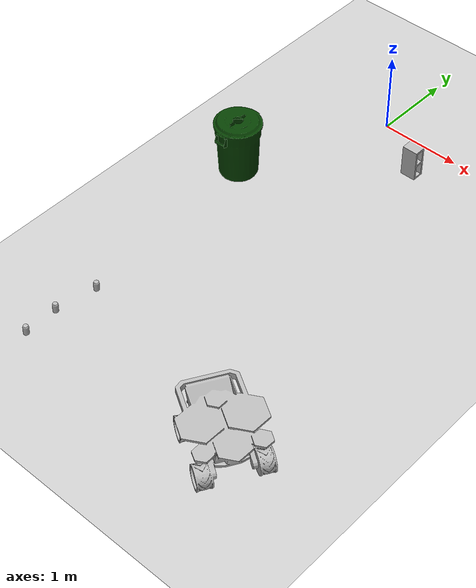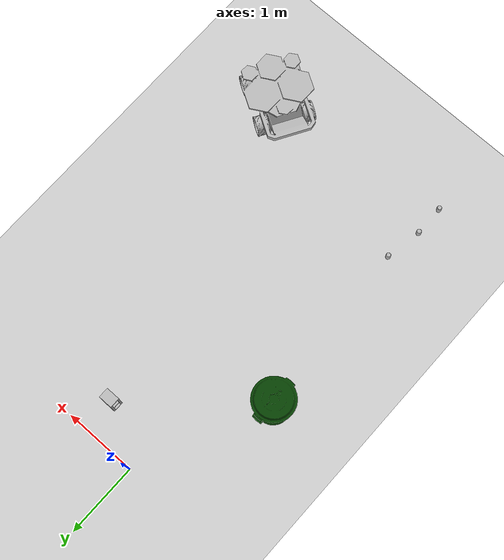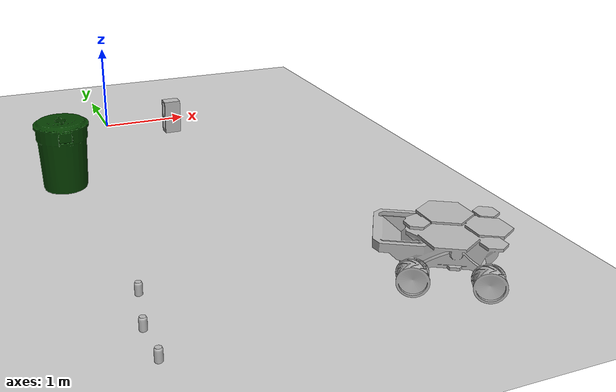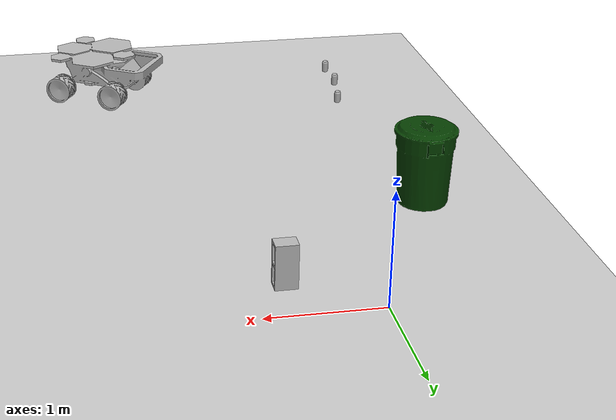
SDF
<sdf version="1.6">
 <world name="default">
  <model name="ground_plane">
   <static>1</static>
   <link name="link">
    <collision name="collision">
     <geometry><plane><normal>0 0 1</normal><size>100 100</size></plane></geometry>
     <surface>
      <contact><collide_bitmask>65535</collide_bitmask></contact>
      <friction><ode><mu>100</mu><mu2>50</mu2></ode></friction>
     </surface>
    </collision>
    <visual name="visual">
     <cast_shadows>0</cast_shadows>
     <geometry><plane><normal>0 0 1</normal><size>100 100</size></plane></geometry>
     <material>
      <script><uri>file://media/materials/scripts/gazebo.material</uri><name>Gazebo/Grey</name></script>
     </material>
    </visual>
   </link>
  </model>
  <model name="coke_can">
   <link name="link">
    <inertial>
     <pose>0 0 0.06 0 -0 0</pose>
     <mass>0.39</mass>
     <inertia>
      <ixx>0.00055575</ixx>
      <ixy>0</ixy>
      <ixz>0</ixz>
      <iyy>0.00055575</iyy>
      <iyz>0</iyz>
      <izz>0.0001755</izz>
     </inertia>
    </inertial>
    <collision name="collision">
     <pose>0.003937 0.004724 -0.18 0 -0 0</pose>
     <geometry><mesh><uri>model://coke_can/meshes/coke_can.dae</uri></mesh></geometry>
     <surface>
      <friction><ode><mu>1</mu><mu2>1</mu2></ode></friction>
      <contact><ode><kp>1e+07</kp><kd>1</kd><min_depth>0.001</min_depth><max_vel>0.1</max_vel></ode></contact>
     </surface>
    </collision>
    <visual name="visual">
     <pose>0.003937 0.004724 -0.18 0 -0 0</pose>
     <geometry><mesh><uri>model://coke_can/meshes/coke_can.dae</uri></mesh></geometry>
    </visual>
   </link>
   <pose>-0.710522 -5.10068 -0.003467 -0.037149 0.007416 -0.000725</pose>
  </model>
  <model name="coke_can_0">
   <link name="link">
    <inertial>
     <pose>0 0 0.06 0 -0 0</pose>
     <mass>0.39</mass>
     <inertia>
      <ixx>0.00055575</ixx>
      <ixy>0</ixy>
      <ixz>0</ixz>
      <iyy>0.00055575</iyy>
      <iyz>0</iyz>
      <izz>0.0001755</izz>
     </inertia>
    </inertial>
    <collision name="collision">
     <pose>0.003937 0.004724 -0.18 0 -0 0</pose>
     <geometry><mesh><uri>model://coke_can/meshes/coke_can.dae</uri></mesh></geometry>
     <surface>
      <friction><ode><mu>1</mu><mu2>1</mu2></ode></friction>
      <contact><ode><kp>1e+07</kp><kd>1</kd><min_depth>0.001</min_depth><max_vel>0.1</max_vel></ode></contact>
     </surface>
    </collision>
    <visual name="visual">
     <pose>0.003937 0.004724 -0.18 0 -0 0</pose>
     <geometry><mesh><uri>model://coke_can/meshes/coke_can.dae</uri></mesh></geometry>
    </visual>
   </link>
   <pose>-0.716567 -4.68502 -0.003467 -0.037149 0.007416 -0.000725</pose>
  </model>
  <model name="coke_can_1">
   <link name="link">
    <inertial>
     <pose>0 0 0.06 0 -0 0</pose>
     <mass>0.39</mass>
     <inertia>
      <ixx>0.00055575</ixx>
      <ixy>0</ixy>
      <ixz>0</ixz>
      <iyy>0.00055575</iyy>
      <iyz>0</iyz>
      <izz>0.0001755</izz>
     </inertia>
    </inertial>
    <collision name="collision">
     <pose>0.003937 0.004724 -0.18 0 -0 0</pose>
     <geometry><mesh><uri>model://coke_can/meshes/coke_can.dae</uri></mesh></geometry>
     <surface>
      <friction><ode><mu>1</mu><mu2>1</mu2></ode></friction>
      <contact><ode><kp>1e+07</kp><kd>1</kd><min_depth>0.001</min_depth><max_vel>0.1</max_vel></ode></contact>
     </surface>
    </collision>
    <visual name="visual">
     <pose>0.003937 0.004724 -0.18 0 -0 0</pose>
     <geometry><mesh><uri>model://coke_can/meshes/coke_can.dae</uri></mesh></geometry>
    </visual>
   </link>
   <pose>-0.625612 -4.18158 -0.003467 -0.037154 0.007408 -0.000726</pose>
  </model>
  <model name="first_2015_trash_can">
   <link name="link">
    <inertial>
     <pose>0 0 0.3683 0 -0 0</pose>
     <mass>4.83076</mass>
     <inertia>
      <ixx>0.281534</ixx>
      <ixy>0</ixy>
      <ixz>0</ixz>
      <iyy>0.281534</iyy>
      <iyz>0</iyz>
      <izz>0.126223</izz>
     </inertia>
    </inertial>
    <visual name="visual">
     <geometry><mesh><uri>model://first_2015_trash_can/meshes/trash_can.dae</uri></mesh></geometry>
    </visual>
    <collision name="collision">
     <geometry><mesh><uri>model://first_2015_trash_can/meshes/trash_can.dae</uri></mesh></geometry>
    </collision>
   </link>
   <pose>-0.803497 -1.75169 -4e-06 9e-06 1.9e-05 -0.002136</pose>
  </model>
  <model name="mars_rover">
   <static>1</static>
   <link name="link">
    <collision name="solar_panel_collision">
     <pose>0 -0.06945 0.47293 0 -0 0</pose>
     <geometry><box><size>0.87974 0.8821 0.02602</size></box></geometry>
    </collision>
    <collision name="chassis_collision">
     <pose>0 -0.05 0.31475 0 -0 0</pose>
     <geometry><box><size>0.49522 0.67401 0.28915</size></box></geometry>
    </collision>
    <collision name="rear_left_bumper_collision">
     <pose>0.30107 0.3835 0.38976 0 -0 0</pose>
     <geometry><box><size>0.04442 0.38897 0.07918</size></box></geometry>
    </collision>
    <collision name="rear_right_bumper_collision">
     <pose>-0.30107 0.3835 0.38976 0 -0 0</pose>
     <geometry><box><size>0.04442 0.38897 0.07918</size></box></geometry>
    </collision>
    <collision name="rear_bumper_collision">
     <pose>0 0.59414 0.38976 0 -0 0</pose>
     <geometry><box><size>0.56656 0.04442 0.07918</size></box></geometry>
    </collision>
    <collision name="bin_back_panel_collision">
     <pose>0 0.47 0.32114 0.69137 -0 0</pose>
     <geometry><box><size>0.43774 0.212366 0.05173</size></box></geometry>
    </collision>
    <collision name="bin_left_panel_collision1">
     <pose>0.22615 0.32897 0.33193 0 -0 0</pose>
     <geometry><box><size>0.01116 0.19338 0.16304</size></box></geometry>
    </collision>
    <collision name="bin_left_panel_collision2">
     <pose>0.22615 0.471 0.39308 0 -0 0</pose>
     <geometry><box><size>0.01116 0.15 0.04</size></box></geometry>
    </collision>
    <collision name="bin_left_panel_collision3">
     <pose>0.22615 0.45 0.35308 0 -0 0</pose>
     <geometry><box><size>0.01116 0.15 0.04</size></box></geometry>
    </collision>
    <collision name="bin_left_panel_collision4">
     <pose>0.22615 0.39308 0.31308 0 -0 0</pose>
     <geometry><box><size>0.01116 0.15 0.04</size></box></geometry>
    </collision>
    <collision name="bin_right_panel_collision1">
     <pose>-0.22615 0.32897 0.33193 0 -0 0</pose>
     <geometry><box><size>0.01116 0.19338 0.16304</size></box></geometry>
    </collision>
    <collision name="bin_right_panel_collision2">
     <pose>-0.22615 0.471 0.39308 0 -0 0</pose>
     <geometry><box><size>0.01116 0.15 0.04</size></box></geometry>
    </collision>
    <collision name="bin_right_panel_collision3">
     <pose>-0.22615 0.45 0.35308 0 -0 0</pose>
     <geometry><box><size>0.01116 0.15 0.04</size></box></geometry>
    </collision>
    <collision name="bin_right_panel_collision4">
     <pose>-0.22615 0.39308 0.31308 0 -0 0</pose>
     <geometry><box><size>0.01116 0.15 0.04</size></box></geometry>
    </collision>
    <collision name="bin_front_panel_collision">
     <pose>0 0.30047 0.32114 2.26207 -0 0</pose>
     <geometry><box><size>0.43774 0.212366 0.05173</size></box></geometry>
    </collision>
    <collision name="front_left_wheel_collision">
     <pose>0.31103 -0.32115 0.1358 1.5707 0 1.5707</pose>
     <geometry><cylinder><radius>0.1358</radius><length>0.1641</length></cylinder></geometry>
    </collision>
    <collision name="front_right_wheel_collision">
     <pose>-0.31103 -0.32115 0.1358 1.5707 0 1.5707</pose>
     <geometry><cylinder><radius>0.1358</radius><length>0.1641</length></cylinder></geometry>
    </collision>
    <collision name="rear_left_wheel_collision">
     <pose>0.31103 0.28049 0.1358 1.5707 0 1.5707</pose>
     <geometry><cylinder><radius>0.1358</radius><length>0.1641</length></cylinder></geometry>
    </collision>
    <collision name="rear_right_wheel_collision">
     <pose>-0.31103 0.28049 0.1358 1.5707 0 1.5707</pose>
     <geometry><cylinder><radius>0.1358</radius><length>0.1641</length></cylinder></geometry>
    </collision>
    <visual name="visual">
     <geometry><mesh><uri>model://mars_rover/meshes/rover.dae</uri></mesh></geometry>
    </visual>
   </link>
   <pose>1.83459 -4.82654 0 0 -0 1.03537</pose>
  </model>
  <model name="cinder_block_2">
   <link name="link">
    <inertial>
     <pose>0 0 0.071438 0 -0 0</pose>
     <mass>5</mass>
     <inertia>
      <ixx>0.06908</ixx>
      <ixy>0</ixy>
      <iyy>0.028705</iyy>
      <ixz>0</ixz>
      <iyz>0</iyz>
      <izz>0.073708</izz>
     </inertia>
    </inertial>
    <visual name="visual">
     <geometry><mesh><uri>model://cinder_block_2/meshes/cinder_block.dae</uri></mesh></geometry>
    </visual>
    <collision name="top">
     <pose>0 0 0.130175 0 -0 0</pose>
     <geometry><box><size>0.19368 0.396875 0.0254</size></box></geometry>
     <surface>
      <contact><ode><max_vel>0.1</max_vel><min_depth>0.001</min_depth></ode></contact>
      <friction><ode><mu>1</mu><mu2>1</mu2></ode></friction>
     </surface>
    </collision>
    <collision name="bottom">
     <pose>0 0 0.0127 0 -0 0</pose>
     <geometry><box><size>0.19368 0.396875 0.0254</size></box></geometry>
     <surface>
      <contact><ode><max_vel>0.1</max_vel><min_depth>0.001</min_depth></ode></contact>
      <friction><ode><mu>1</mu><mu2>1</mu2></ode></friction>
     </surface>
    </collision>
    <collision name="left">
     <pose>0 -0.185738 0.071438 0 -0 0</pose>
     <geometry><box><size>0.19368 0.0254 0.092075</size></box></geometry>
     <surface>
      <contact><ode><max_vel>0.1</max_vel><min_depth>0.001</min_depth></ode></contact>
      <friction><ode><mu>1</mu><mu2>1</mu2></ode></friction>
     </surface>
    </collision>
    <collision name="right">
     <pose>0 0.185738 0.071438 0 -0 0</pose>
     <geometry><box><size>0.19368 0.0254 0.092075</size></box></geometry>
     <surface>
      <contact><ode><max_vel>0.1</max_vel><min_depth>0.001</min_depth></ode></contact>
      <friction><ode><mu>1</mu><mu2>1</mu2></ode></friction>
     </surface>
    </collision>
    <collision name="middle">
     <pose>0 0 0.071438 0 -0 0</pose>
     <geometry><box><size>0.19368 0.0254 0.092075</size></box></geometry>
     <surface>
      <contact><ode><max_vel>0.1</max_vel><min_depth>0.001</min_depth></ode></contact>
      <friction><ode><mu>1</mu><mu2>1</mu2></ode></friction>
     </surface>
    </collision>
   </link>
   <pose>0.72565 -0.395793 0.198015 1.57072 -2.3e-05 0.000134</pose>
  </model>
 </world>
</sdf>
